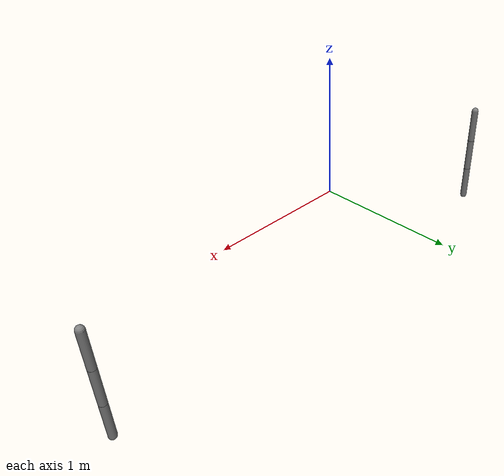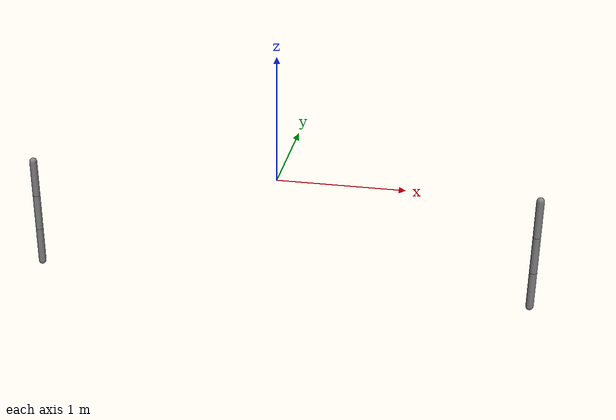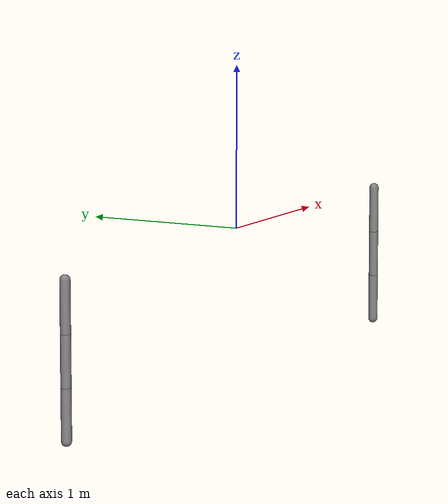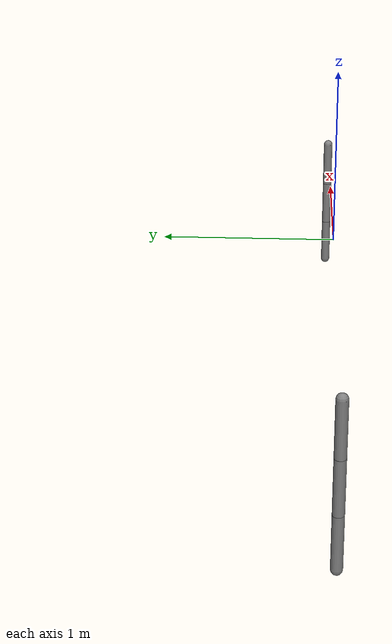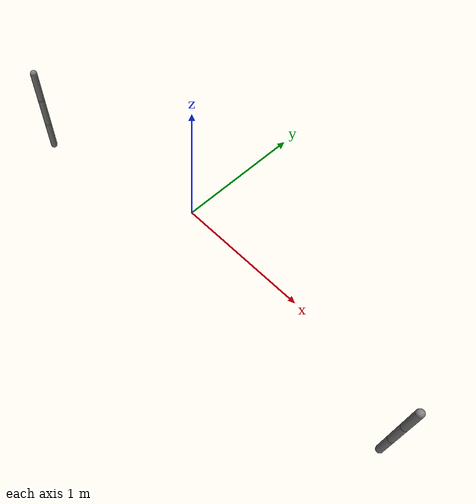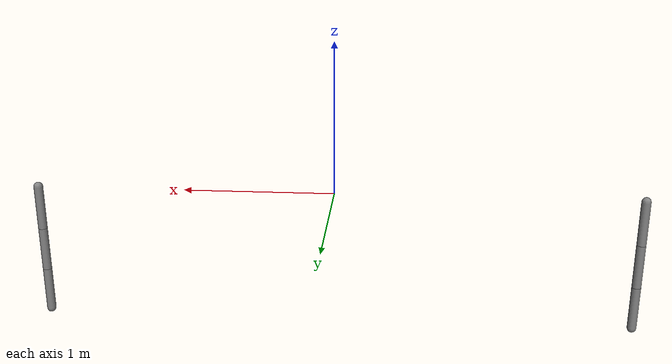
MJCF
<mujoco model="two_chain_c3b">
        <option gravity="0 0 -9.81" timestep="0.001" sleep_tolerance="0.1">
            <flag sleep="enable"/>
        </option>
        <worldbody>
            <body name="a1" pos="-2 0 0">
                <joint name="ha1" type="hinge" axis="0 1 0" damping="20"/>
                <geom type="capsule" size="0.03" fromto="0 0 0 0 0 -0.3" mass="0.5"/>
                <body name="a2" pos="0 0 -0.3">
                    <joint name="ha2" type="hinge" axis="0 1 0" damping="20"/>
                    <geom type="capsule" size="0.03" fromto="0 0 0 0 0 -0.3" mass="0.5"/>
                    <body name="a3" pos="0 0 -0.3">
                        <joint name="ha3" type="hinge" axis="0 1 0" damping="20"/>
                        <geom type="capsule" size="0.03" fromto="0 0 0 0 0 -0.3" mass="0.5"/>
                    </body>
                </body>
            </body>
            <body name="b1" pos="2 0 0">
                <joint name="hb1" type="hinge" axis="0 1 0" damping="20"/>
                <geom type="capsule" size="0.03" fromto="0 0 0 0 0 -0.3" mass="0.5"/>
                <body name="b2" pos="0 0 -0.3">
                    <joint name="hb2" type="hinge" axis="0 1 0" damping="20"/>
                    <geom type="capsule" size="0.03" fromto="0 0 0 0 0 -0.3" mass="0.5"/>
                    <body name="b3" pos="0 0 -0.3">
                        <joint name="hb3" type="hinge" axis="0 1 0" damping="20"/>
                        <geom type="capsule" size="0.03" fromto="0 0 0 0 0 -0.3" mass="0.5"/>
                    </body>
                </body>
            </body>
        </worldbody>
    </mujoco>
